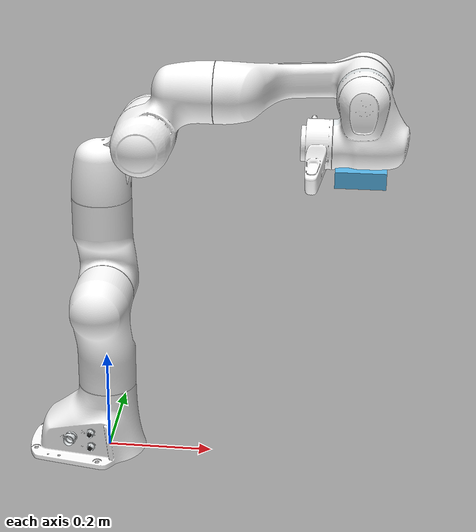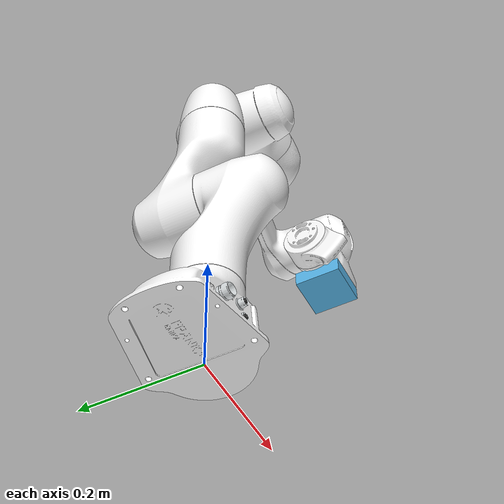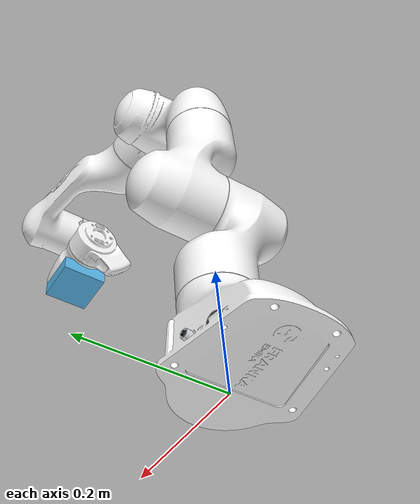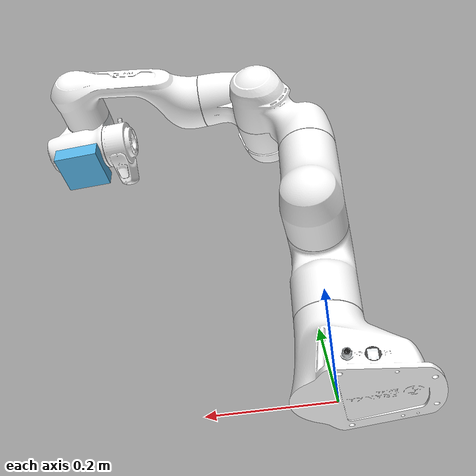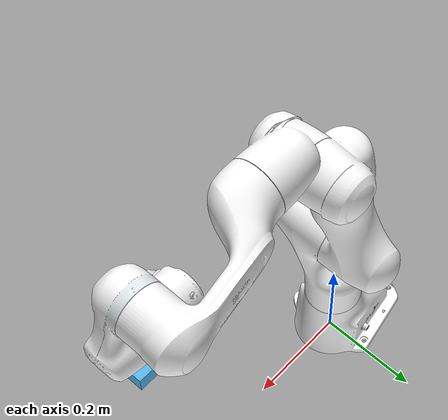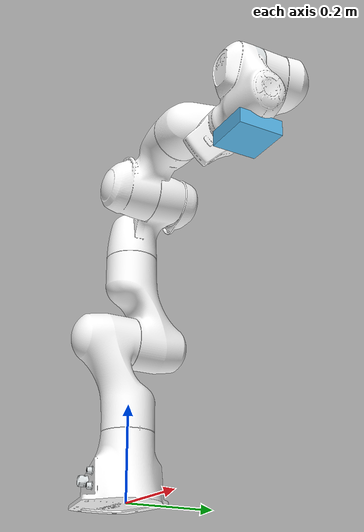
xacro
<?xml version="1.0" encoding="utf-8"?>
<robot xmlns:xacro="http://www.ros.org/wiki/xacro" name="panda">
  <xacro:arg name="robot_name" default="panda"/>

  <!-- Empty link to referr everything to -->
  <link name="world" />

  <!-- Robot arm -->
  <xacro:include filename="$(find franka_description)/robots/panda_arm.xacro"/>
  <xacro:include filename="$(find franka_description)/robots/hand.xacro"/>
  <xacro:include filename="$(find franka_description)/robots/panda.gazebo.xacro"/>
  <xacro:include filename="$(find franka_description)/robots/panda.transmission.xacro"/>

  <!-- Camera -->

  <!-- Robot1 Pedestal -->

  <!-- bins -->
  <!--xacro:include filename="$(find franka_description)/robots/bin/bin.urdf.xacro"/-->
  <!--xacro:bin_urdf prefix="bin_1_"/-->
  <!--xacro:bin_urdf prefix="bin_2_"/-->

  <!-- Robot arm definition-->
  <xacro:panda_arm />
  <!-- Comment or uncomment to add the gripper -->
  <!--xacro:hand ns="robot1" rpy="0 0 ${-pi/4}" connected_to="panda_link8"/-->
  <xacro:panda_gazebo robot_name="$(arg robot_name)" />
  <xacro:panda_transmission robot_name="$(arg robot_name)" />

  <!-- pedestal to world -->

  <!-- bin 1 -->

  <!-- bin 2 -->

</robot>

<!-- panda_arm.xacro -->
<robot xmlns:xacro="http://www.ros.org/wiki/xacro" name="panda">

  <!--Correct masses-->
  <xacro:property name="mass_link0" value="3.06357" />
  <xacro:property name="mass_link1" value="2.34471" />
  <xacro:property name="mass_link2" value="2.36414" />
  <xacro:property name="mass_link3" value="2.38050" />
  <xacro:property name="mass_link4" value="2.42754" />
  <xacro:property name="mass_link5" value="3.49611" />
  <xacro:property name="mass_link6" value="1.46736" />
  <xacro:property name="mass_link7" value="0.45606" />
  <xacro:property name="mass_link8" value="0.001" />
  <xacro:property name="mass_marker" value="0.00001" />
  <!-- Wrong masses to test adaptability of the algorithms, on purpose off by 20% -->

  <xacro:property name="link0_cog" value="-0.029190 -0.000879 0.056603" />
  <xacro:property name="link1_cog" value="0.000011 -0.031266 -0.069373" />
  <xacro:property name="link2_cog" value="-0.000013 -0.070322 0.031178" />
  <xacro:property name="link3_cog" value="0.044348 0.024928 -0.038130" />
  <xacro:property name="link4_cog" value="-0.038550 0.039526 0.024716" />
  <xacro:property name="link5_cog" value="-0.000064 0.038412 -0.109970" />
  <xacro:property name="link6_cog" value="0.051002 0.006933 0.006169" />
  <xacro:property name="link7_cog" value="0.010361 0.010360 0.079108" />

    <xacro:macro name="cylinder_inertial" params="radius length mass *origin">
      <inertial>
        <mass value="${mass}" />
        <xacro:insert_block name="origin" />
        <inertia ixx="${0.0833333 * mass * (3 * radius * radius + length * length)}" ixy="0.0" ixz="0.0"
          iyy="${0.0833333 * mass * (3 * radius * radius + length * length)}" iyz="0.0"
          izz="${0.5 * mass * radius * radius}" />
      </inertial>
  </xacro:macro>

  <xacro:macro name="panda_arm" params="arm_id:='panda' description_pkg:='franka_description' connected_to:='' xyz:='0 0 0' rpy:='0 0 0'">
    <xacro:unless value="${not connected_to}">
      <joint name="${arm_id}_joint_${connected_to}" type="fixed">
        <parent link="${connected_to}"/>
        <child link="${arm_id}_link0"/>
        <origin rpy="${rpy}" xyz="${xyz}"/>
      </joint>
    </xacro:unless>

    <xacro:property name="joint_damping" value="1.0"/>

    <joint name="robot_to_world" type="fixed">
      <parent link="world" />
      <child link="${arm_id}_link0" />
      <origin xyz="0.0 0.0 0.0" rpy="0.0 0.0 0.0" />
      <dynamics damping="${joint_damping}"/>
    </joint>

    <link name="${arm_id}_link0">
      <visual>
        <geometry>
          <mesh filename="package://${description_pkg}/meshes/visual/link0.dae"/>
        </geometry>
      </visual>
      <collision>
        <geometry>
          <mesh filename="package://${description_pkg}/meshes/collision/link0.stl"/>
        </geometry>
      </collision>
      <inertial>
        <origin xyz="${link0_cog}" rpy="0 0 0"/>
        <mass value="${mass_link0}"/>
        <inertia ixx="0.009" iyy="0.0122" izz="0.0122" ixy="0.0" ixz="-0.00010" iyz="0.0"/>
      </inertial>
    </link>
    <link name="${arm_id}_link1">
      <visual>
        <geometry>
          <mesh filename="package://${description_pkg}/meshes/visual/link1.dae"/>
        </geometry>
      </visual>
      <collision>
        <geometry>
          <mesh filename="package://${description_pkg}/meshes/collision/link1.stl"/>
        </geometry>
      </collision>
      <inertial>
        <origin xyz="${link1_cog}" rpy="0 0 0"/>
        <mass value="${mass_link1}"/>
        <inertia ixx="0.01418" iyy="0.01181" izz="0.005515" ixy="0.0" ixz="0.0" iyz="0.00236"/>
      </inertial>
    </link>
    <joint name="${arm_id}_joint1" type="revolute">
      <safety_controller k_position="100.0" k_velocity="40.0" soft_lower_limit="-2.8973" soft_upper_limit="2.8973"/>
      <origin rpy="0 0 0" xyz="0 0 0.333"/>
      <parent link="${arm_id}_link0"/>
      <child link="${arm_id}_link1"/>
      <axis xyz="0 0 1"/>
      <limit effort="87" lower="-2.8973" upper="2.8973" velocity="2.1750"/>
      <dynamics damping="${joint_damping}"/>
    </joint>
    <link name="${arm_id}_link2">
      <visual>
        <geometry>
          <mesh filename="package://${description_pkg}/meshes/visual/link2.dae"/>
        </geometry>
      </visual>
      <collision>
        <geometry>
          <mesh filename="package://${description_pkg}/meshes/collision/link2.stl"/>
        </geometry>
      </collision>
      <inertial>
        <origin xyz="${link2_cog}" rpy="0 0 0"/>
        <mass value="${mass_link2}"/>
        <inertia ixx="0.014" ixy="0.0" ixz="0.0" iyy="0.0055" iyz="-0.0023" izz="0.01259"/>
      </inertial>
    </link>
    <joint name="${arm_id}_joint2" type="revolute">
      <safety_controller k_position="100.0" k_velocity="40.0" soft_lower_limit="-1.7628" soft_upper_limit="1.7628"/>
      <origin rpy="${-pi/2} 0 0" xyz="0 0 0"/>
      <parent link="${arm_id}_link1"/>
      <child link="${arm_id}_link2"/>
      <axis xyz="0 0 1"/>
      <limit effort="87" lower="-1.7628" upper="1.7628" velocity="2.1750"/>
      <dynamics damping="${joint_damping}"/>
    </joint>
    <link name="${arm_id}_link3">
      <visual>
        <geometry>
          <mesh filename="package://${description_pkg}/meshes/visual/link3.dae"/>
        </geometry>
      </visual>
      <collision>
        <geometry>
          <mesh filename="package://${description_pkg}/meshes/collision/link3.stl"/>
        </geometry>
      </collision>
      <inertial>
        <origin xyz="${link3_cog}" rpy="0 0 0"/>
        <mass value="${mass_link3}"/>
        <inertia ixx="0.00716" ixy="-0.00102" ixz="-0.02040" iyy="0.00920" iyz="-0.00102" izz="0.007159"/>
      </inertial>
    </link>
    <joint name="${arm_id}_joint3" type="revolute">
      <safety_controller k_position="100.0" k_velocity="40.0" soft_lower_limit="-2.8973" soft_upper_limit="2.8973"/>
      <origin rpy="${pi/2} 0 0" xyz="0 -0.316 0"/>
      <parent link="${arm_id}_link2"/>
      <child link="${arm_id}_link3"/>
      <axis xyz="0 0 1"/>
      <limit effort="87" lower="-2.8973" upper="2.8973" velocity="2.1750"/>
      <dynamics damping="${joint_damping}"/>
    </joint>
    <link name="${arm_id}_link4">
      <visual>
        <geometry>
          <mesh filename="package://${description_pkg}/meshes/visual/link4.dae"/>
        </geometry>
      </visual>
      <collision>
        <geometry>
          <mesh filename="package://${description_pkg}/meshes/collision/link4.stl"/>
        </geometry>
      </collision>
      <inertial>
        <origin xyz="${link4_cog}" rpy="0 0 0"/>
        <mass value="${mass_link4}"/>
        <inertia ixx="0.008164" ixy="0.003061" ixz="0.00102" iyy="0.008165" iyz="0.00102" izz="0.009185"/>
      </inertial>
    </link>
    <joint name="${arm_id}_joint4" type="revolute">
      <safety_controller k_position="100.0" k_velocity="40.0" soft_lower_limit="-3.0718" soft_upper_limit="-0.0698"/>
      <origin rpy="${pi/2} 0 0" xyz="0.0825 0 0"/>
      <parent link="${arm_id}_link3"/>
      <child link="${arm_id}_link4"/>
      <axis xyz="0 0 1"/>
      <limit effort="87" lower="-3.0718" upper="-0.0698" velocity="2.1750"/>
      <dynamics damping="${joint_damping}"/>
    </joint>
    <link name="${arm_id}_link5">
      <visual>
        <geometry>
          <mesh filename="package://${description_pkg}/meshes/visual/link5.dae"/>
        </geometry>
      </visual>
      <collision>
        <geometry>
          <mesh filename="package://${description_pkg}/meshes/collision/link5.stl"/>
        </geometry>
      </collision>
      <inertial>
        <origin xyz="${link5_cog}" rpy="0 0 0"/>
        <mass value="${mass_link5}"/>
        <inertia ixx="0.0307" ixy="0.0" ixz="0.0" iyy="0.02761" iyz="-0.0613" izz="0.00818"/>
      </inertial>
    </link>
    <joint name="${arm_id}_joint5" type="revolute">
      <safety_controller k_position="100.0" k_velocity="40.0" soft_lower_limit="-2.8973" soft_upper_limit="2.8973"/>
      <origin rpy="${-pi/2} 0 0" xyz="-0.0825 0.384 0"/>
      <parent link="${arm_id}_link4"/>
      <child link="${arm_id}_link5"/>
      <axis xyz="0 0 1"/>
      <limit effort="12" lower="-2.8973" upper="2.8973" velocity="2.6100"/>
      <dynamics damping="${joint_damping}"/>
    </joint>
    <link name="${arm_id}_link6">
      <visual>
        <geometry>
          <mesh filename="package://${description_pkg}/meshes/visual/link6.dae"/>
        </geometry>
      </visual>
      <collision>
        <geometry>
          <mesh filename="package://${description_pkg}/meshes/collision/link6.stl"/>
        </geometry>
      </collision>
      <inertial>
        <origin xyz="${link6_cog}" rpy="0 0 0"/>
        <mass value="${mass_link6}"/>
        <inertia ixx="0.00205" ixy="0.0" ixz="0.0" iyy="0.004089" iyz="0" izz="0.00490"/>
      </inertial>
    </link>
    <joint name="${arm_id}_joint6" type="revolute">
      <safety_controller k_position="100.0" k_velocity="40.0" soft_lower_limit="-0.0175" soft_upper_limit="3.7525"/>
      <origin rpy="${pi/2} 0 0" xyz="0 0 0"/>
      <parent link="${arm_id}_link5"/>
      <child link="${arm_id}_link6"/>
      <axis xyz="0 0 1"/>
      <limit effort="12" lower="-0.0175" upper="3.7525" velocity="2.6100"/>
      <dynamics damping="${joint_damping}"/>
    </joint>
    <link name="${arm_id}_link7">
      <visual>
        <geometry>
          <mesh filename="package://${description_pkg}/meshes/visual/link7.dae"/>
        </geometry>
      </visual>
      <collision>
        <geometry>
          <mesh filename="package://${description_pkg}/meshes/collision/link7.stl"/>
        </geometry>
      </collision>
      <inertial>
        <origin xyz="0 0 0" rpy="0 0 0"/>
        <mass value="${mass_link7}"/>
        <inertia ixx="0.3" ixy="0.0" ixz="0.0" iyy="0.3" iyz="0.0" izz="0.3"/>
      </inertial>
    </link>

    <joint name="${arm_id}_joint7" type="revolute">
      <safety_controller k_position="100.0" k_velocity="40.0" soft_lower_limit="-2.8973" soft_upper_limit="2.8973"/>
      <origin rpy="${pi/2} 0 0" xyz="0.088 0 0"/>
      <parent link="${arm_id}_link6"/>
      <child link="${arm_id}_link7"/>
      <axis xyz="0 0 1"/>
      <limit effort="12" lower="-2.8973" upper="2.8973" velocity="2.6100"/>
      <dynamics damping="${joint_damping}"/>
    </joint>

<!-- ADD MARKER TO LAST JOINT -->

    <link name="${arm_id}_marker">
      <visual>
        <origin xyz="0 0 0" rpy="0 0 0" />
        <geometry>
          <mesh filename="package://${description_pkg}/meshes/aruco_marker.dae"/>
        </geometry>
      </visual>
    </link>
    <joint name="robot_to_marker" type="fixed">
      <parent link="${arm_id}_link7" />
      <child link="${arm_id}_marker" />
    <origin xyz="0.05 0.0 0.0" rpy="0.0 1.57 0.0" />
    </joint>
    <link name="${arm_id}_link8">
      <inertial>
        <origin xyz="0 0 0" rpy="0 0 0"/>
        <mass value="${mass_link8}"/>
        <inertia ixx="0.3" ixy="0.0" ixz="0.0" iyy="0.3" iyz="0.0" izz="0.3"/>
      </inertial>
    </link>

    <joint name="${arm_id}_joint8" type="revolute">
      <origin rpy="0 0 0" xyz="0 0 0.107"/>
      <parent link="${arm_id}_link7"/>
      <child link="${arm_id}_link8"/>
      <child link="${arm_id}_marker"/>
      <axis xyz="0 0 1"/>
      <limit effort="1" lower="0" upper="0.1" velocity="0.1"/>
      <dynamics damping="100"/>
    </joint>

  </xacro:macro>

</robot>
